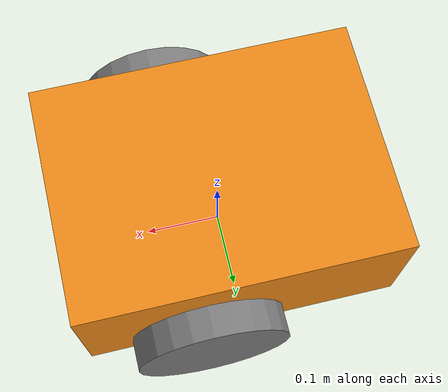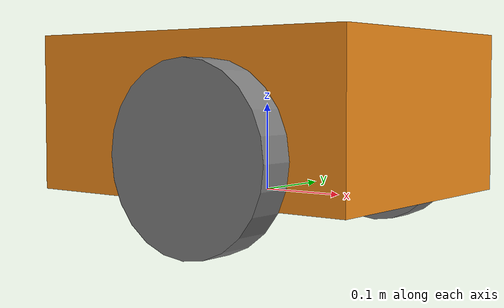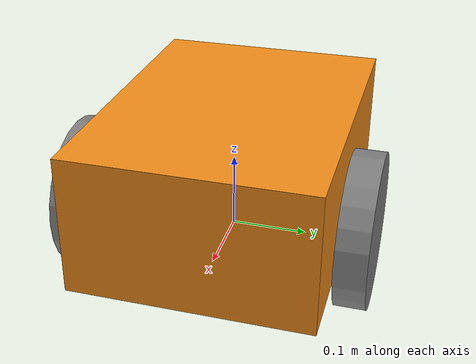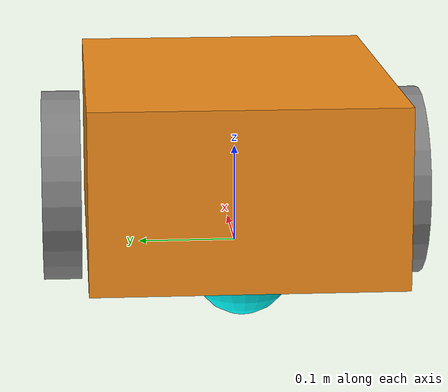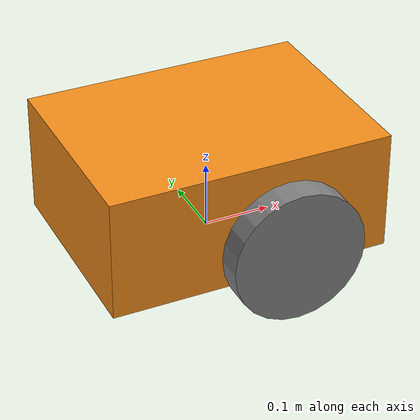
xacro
<?xml version="1.0"?>
<robot xmlns:xacro="http://www.ros.org/wiki/xacro" name="mobile_robot">
    <!--base properties-->
    <xacro:property name="base_length" value="0.42"/>
    <xacro:property name="base_width" value="0.31"/>
    <xacro:property name="base_height" value="0.18"/>

    <!-- wheel properties-->
    <xacro:property name="wheel_radius" value="0.10"/>
    <xacro:property name="wheel_width" value="0.04"/>
    <xacro:property name="wheel_ygap" value="0.025"/>
    <xacro:property name="wheel_zoff" value="0.05"/>
    <xacro:property name="wheel_xoff" value="0.05"/>

    <!-- caster property-->
    <xacro:property name="caster_xoff" value="0.1"/>

    <!--Define inertial property macro -->
    <xacro:macro name="box_inertial" params="m w d h">
        <inertial>
            <origin xyz="0.0 0.0 0.0" rpy="0.0 0.0 0.0"/>
            <mass value="${m}"/>
            <inertia ixx="${(m/12) * (h*h + d*d)}" ixy="0.0" ixz="0.0" iyy="${(m/12) * (w*w + h*h)}" iyz="0.0" izz="${(m/12) * (w*w + d*d)}"/>
        </inertial>
    </xacro:macro>

    <xacro:macro name="cylinder_inertia" params="m r h">
        <inertial>
            <origin xyz="0.0 0.0 0.0" rpy="${pi/2} 0.0 0.0"/>
            <mass value="${m}"/>
            <inertia ixx="${(m/12) * (3*r*r + h*h)}" ixy="0.0" ixz="0.0" iyy="${(m/12) * (3*r*r + h*h)}" iyz="0.0" izz="${(m/2) * (r * r)}"/>
        </inertial>
    </xacro:macro>

    <xacro:macro name="sphere_inertia" params="m r">
        <inertial>
            <mass value="${m}"/>
            <inertia ixx="${(2/5) * m * (r*r)}" ixy="0.0" ixz="0.0" iyy="${(2/5) * m * (r*r)}" iyz="0.0" izz="${(2/5) * m * (r*r)}"/>
        </inertial>
    </xacro:macro>

    <!-- Robot Base -->

    <link name="base_link">
        <visual>
            <origin xyz="0.0 0.0 ${base_height/2}" rpy="0.0 0.0 0.0"/>

            <geometry>
                <box size="${base_length} ${base_width} ${base_height}"/>
            </geometry>
        </visual>
        <collision>
            <origin xyz="0.0 0.0 ${base_height/2}" rpy="0.0 0.0 0.0"/>

            <geometry>
                <box size="${base_length} ${base_width} ${base_height}"/>
            </geometry>
        </collision>
        <xacro:box_inertial m="5" w="${base_width}" d="${base_length}" h="${base_height}" />

    </link>

    <gazebo reference="base_link">
        <material>Gazebo/Orange</material>
    </gazebo>

    <!--Caster wheel-->
    <link name="caster">
        <visual>
            <geometry>
                <sphere radius="${wheel_zoff}"/>
            </geometry>
            <material name="cyan">
                <color rgba="0 1.0 1.0 1.0" />
            </material>
        </visual>
        <collision>
            <origin xyz="0.0 0.0 0.0" rpy="0.0 0.0 0.0"/>
            <geometry>
                <sphere radius="${wheel_zoff}"/>
            </geometry>
        </collision>

        <xacro:sphere_inertia m="0.5" r="${(wheel_radius+wheel_zoff -(base_height/2))}" />
    </link>

    <gazebo reference="caster">
        <material>Gazebo/Blue</material>
    </gazebo>

    <joint name="joint_name" type="fixed">
        <parent link="base_link"/>
        <child link="caster"/>
        <origin xyz="${-caster_xoff} 0.0 0.0" rpy="0.0 0.0 0.0"/>
    </joint>

    <!--wheels-->
    <xacro:macro name="wheel" params="prefix x_reflect y_reflect">
        <link name="${prefix}_link">
            <visual>
                <origin xyz="0.0 0.0 0.0" rpy="${pi/2} 0.0 0.0"/>
                <geometry>
                    <cylinder radius="${wheel_radius}" length="${wheel_width}"/>
                </geometry>
                <material name="gray">
                    <color rgba="0.5 0.5 0.5 1.0" />
                </material >
            </visual>

            <collision>
                <origin xyz="0.0 0.0 0.0" rpy="${pi/2} 0.0 0.0"/>
                <geometry>
                    <cylinder radius="${wheel_radius}" length="${wheel_width}"/>
                </geometry>
            </collision>
            <xacro:cylinder_inertia m="0.5" r="${wheel_radius}" h="${wheel_width}" />
        </link>

        <joint name="${prefix}_joint" type="continuous">
            <parent link="base_link"/>
            <child link="${prefix}_link"/>
            <axis xyz="0 1 0"/>
            <origin xyz="${-x_reflect*wheel_xoff} ${y_reflect*(base_width/2+wheel_ygap)} ${wheel_radius-wheel_zoff}" rpy="0 0 0"/>
        </joint>
    </xacro:macro>

    <xacro:wheel prefix="drivewhl_l" x_reflect="-1" y_reflect="1" />
    <xacro:wheel prefix="drivewhl_r" x_reflect="-1" y_reflect="-1" />

    <gazebo>
        <plugin name="diff_drive" filename='libgazebo_ros_diff_drive.so'>
            <!-- wheels-->
            <left_joint>drivewhl_l_joint</left_joint>
            <right_joint>drivewhl_r_joint</right_joint>

            <!--kinematics-->
            <wheel_separation>0.4</wheel_separation>
            <wheel_diameter>0.2</wheel_diameter>

            <!--limits-->
            <max_wheel_torque>80</max_wheel_torque>
            <max_wheel_acceleration>1.0</max_wheel_acceleration>

            <!--output-->
            <publish_odom>true</publish_odom>
            <publish_odom_tf>true</publish_odom_tf>
            <publish_wheel_tf>true</publish_wheel_tf>

            <odometry_frame>odom</odometry_frame>
            <robot_base_frame>base_link</robot_base_frame>
        </plugin>

    </gazebo>

</robot>
